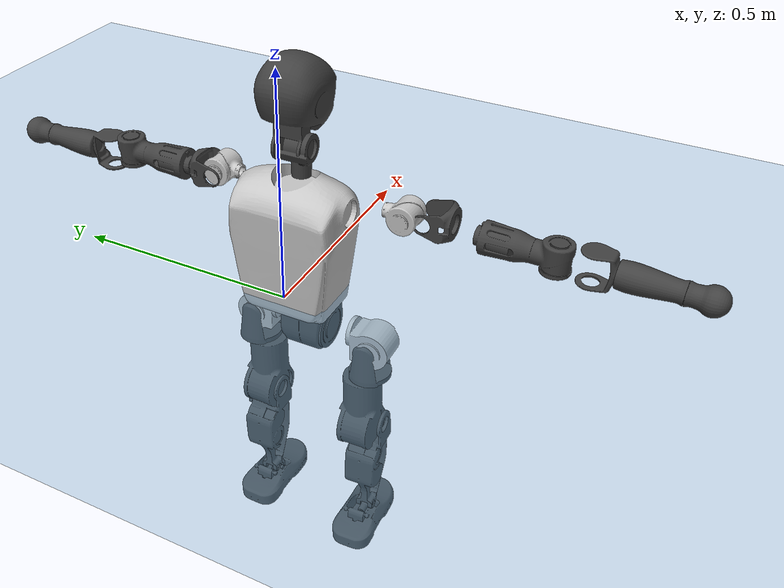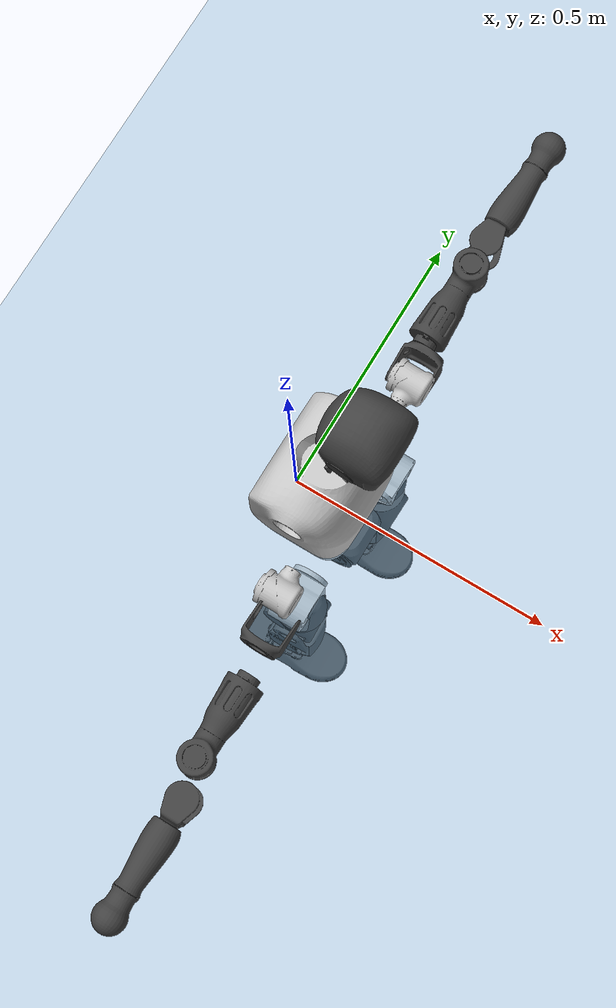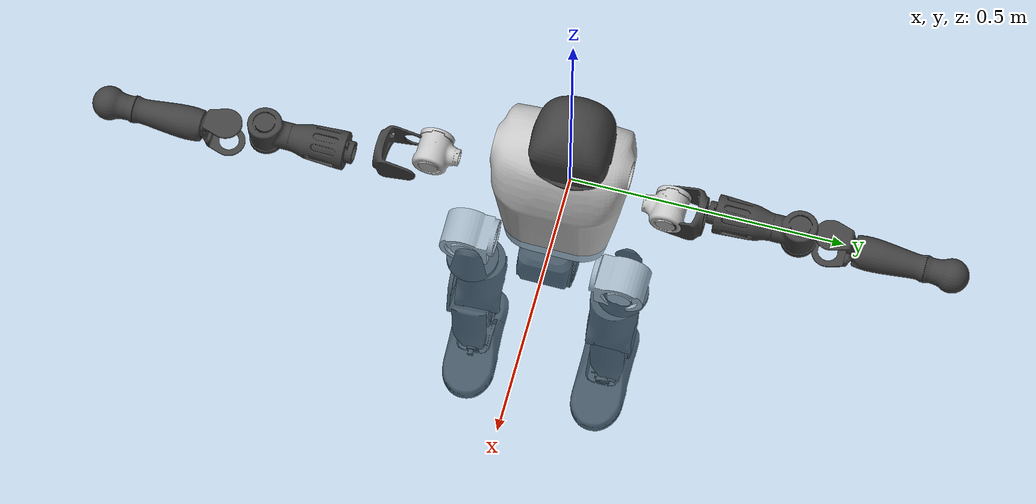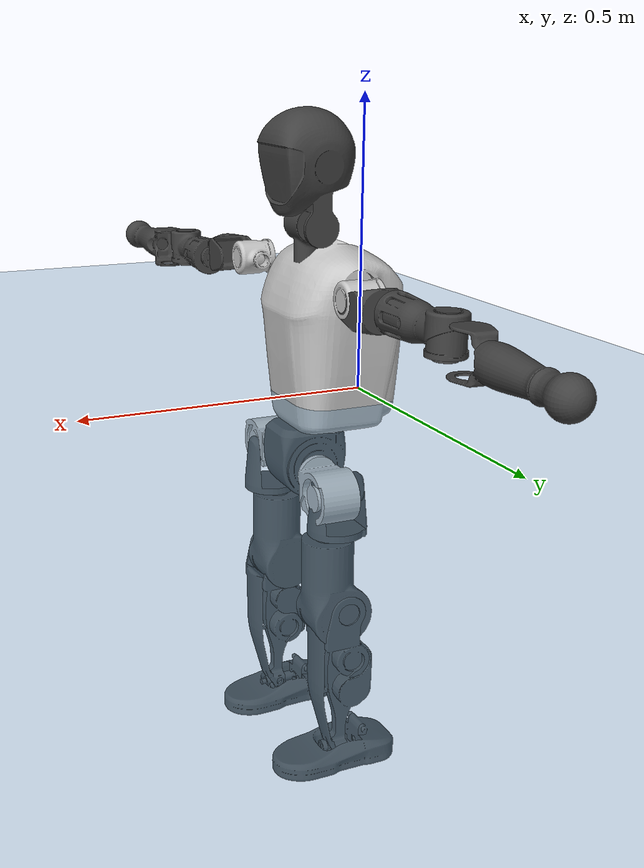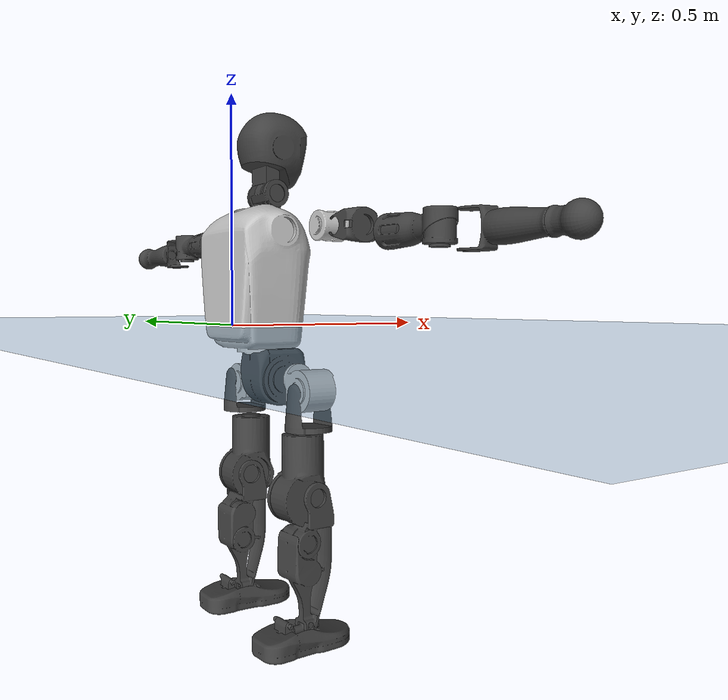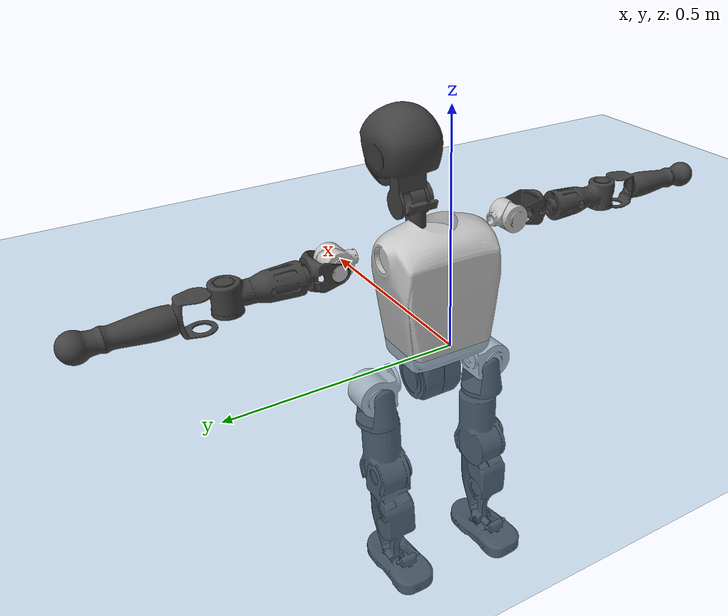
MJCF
<mujoco model="T1">
  <compiler angle="radian" assetdir="assets" balanceinertia="true" inertiafromgeom="false"/>

  <option timestep="0.005" density="1.2" viscosity="2e-05"/>

  <size nkey="1"/>

  <visual>
    <quality shadowsize="8192"/>
    <map shadowclip="0.5"/>
  </visual>

  <default>
    <default class="/">
      <joint armature="0.01" damping="0.01" frictionloss="0.1"/>
      <geom contype="0" conaffinity="0" group="1" solref="-1000 -80"/>
      <site size="0.01 0.005 0.005" group="5"/>
      <general forcelimited="true" biastype="affine" gainprm="25" biasprm="0 -25 -0.6"/>
      <default class="t1">
        <geom rgba="0.25 0.25 0.25 1"/>
        <default class="visual">
          <geom type="mesh" group="2"/>
        </default>
        <default class="collision">
          <geom group="3"/>
        </default>
        <default class="foot">
          <geom size="0.1115 0.05 0.015" type="box" condim="6" group="4" priority="1" solimp="0.015 1 0.015"/>
        </default>
        <default class="reward_collision_sphere">
          <geom group="5" rgba="1 0 0 1"/>
        </default>
      </default>
    </default>
  </default>

  <asset>
    <texture type="skybox" colorspace="auto" name="//unnamed_texture_0" builtin="gradient" rgb1="0.95 0.95 0.95" rgb2="0.95 0.95 0.95" width="100" height="600"/>
    <texture type="2d" colorspace="auto" name="texplane" builtin="checker" rgb1="0.345 0.575 0.748" rgb2="0.345 0.575 0.748" markrgb="1 1 1" width="512" height="512"/>
    <material name="MatPlane" class="/" texture="texplane" texuniform="true" texrepeat="2 2" specular="0.9"/>
    <mesh name="Trunk" class="/" file="Trunk.stl"/>
    <mesh name="H1" class="/" file="H1.stl"/>
    <mesh name="H2" class="/" file="H2.stl"/>
    <mesh name="AL1" class="/" file="AL1.stl"/>
    <mesh name="AL2" class="/" file="AL2.stl"/>
    <mesh name="AL3" class="/" file="AL3.stl"/>
    <mesh name="left_hand_link" class="/" file="left_hand_link.stl"/>
    <mesh name="AR1" class="/" file="AR1.stl"/>
    <mesh name="AR2" class="/" file="AR2.stl"/>
    <mesh name="AR3" class="/" file="AR3.stl"/>
    <mesh name="right_hand_link" class="/" file="right_hand_link.stl"/>
    <mesh name="Waist" class="/" file="Waist.stl"/>
    <mesh name="Hip_Pitch_Left" class="/" file="Hip_Pitch_Left.stl"/>
    <mesh name="Hip_Roll_Left" class="/" file="Hip_Roll_Left.stl"/>
    <mesh name="Hip_Yaw_Left" class="/" file="Hip_Yaw_Left.stl"/>
    <mesh name="Shank_Left" class="/" file="Shank_Left.stl"/>
    <mesh name="Ankle_Cross_Left" class="/" file="Ankle_Cross_Left.stl"/>
    <mesh name="left_foot_link" class="/" file="left_foot_link.stl"/>
    <mesh name="Hip_Pitch_Right" class="/" file="Hip_Pitch_Right.stl"/>
    <mesh name="Hip_Roll_Right" class="/" file="Hip_Roll_Right.stl"/>
    <mesh name="Hip_Yaw_Right" class="/" file="Hip_Yaw_Right.stl"/>
    <mesh name="Shank_Right" class="/" file="Shank_Right.stl"/>
    <mesh name="Ankle_Cross_Right" class="/" file="Ankle_Cross_Right.stl"/>
    <mesh name="right_foot_link" class="/" file="right_foot_link.stl"/>
  </asset>

  <worldbody>
    <geom name="floor" class="/" size="100 100 0.125" type="plane" group="0" material="MatPlane"/>
    <light name="toplight_shadow" class="/" pos="0 0 5" dir="0.0990148 0.0990148 -0.990148" type="directional" ambient="0.04 0.04 0.04" diffuse="0.55 0.55 0.55" specular="0.12 0.12 0.12"/>
    <light name="toplight_fill" class="/" pos="0 0 5" dir="0.0990148 0.0990148 -0.990148" type="directional" castshadow="false" ambient="0.04 0.04 0.04" diffuse="0.3 0.3 0.3" specular="0.08 0.08 0.08"/>
    <body name="trunk" childclass="t1" pos="0.00502891 0.000280633 -0.0158232" quat="0.999995 -0.00211144 -9.31767e-05 -0.00232684">
      <inertial pos="0.0780029 0.00376003 0.117137" quat="0.998063 -0.0535731 -0.0218521 0.0228481" mass="29.7759" diaginertia="0.699096 0.474497 0.0686819"/>
      <joint name="//unnamed_joint_0" type="free" armature="0" damping="0" frictionloss="0"/>
      <geom name="//unnamed_geom_1" class="visual" rgba="0.76 0.76 0.76 1" mesh="Trunk"/>
      <geom name="//unnamed_geom_2" class="collision" size="0.100131 0.133508 0.200262" pos="0.0892803 0 0.122943" type="box"/>
      <geom name="//unnamed_geom_3" class="reward_collision_sphere" size="0.153534" pos="0.0892803 0 0.102452"/>
      <geom name="//unnamed_geom_4" class="reward_collision_sphere" size="0.0200262" pos="0.0892803 0.12688 0"/>
      <geom name="//unnamed_geom_5" class="reward_collision_sphere" size="0.0200262" pos="0.0892803 -0.12688 0"/>
      <geom name="//unnamed_geom_6" class="reward_collision_sphere" size="0.0200262" pos="0.0892803 0.159719 0.184414"/>
      <geom name="//unnamed_geom_7" class="reward_collision_sphere" size="0.0200262" pos="0.0892803 -0.159719 0.184414"/>
      <site name="imu" pos="-0.0968841 0.0863087 -0.054691" size="0.0133508"/>
      <camera name="track" pos="0 -2.98541 0" quat="0.707107 0.707107 0 0" mode="trackcom"/>
      <camera name="ego_camera" pos="0.181537 0 0.430299" quat="-0.5 -0.5 0.5 0.5"/>
      <body name="H1" pos="0.103392 0.0129178 0.248278" quat="0.99998 -0.00337627 0.00112139 0.0052555">
        <inertial pos="-0.000701618 0.00553677 0.0667328" quat="0.762141 -0.0107527 0.0481779 0.645526" mass="0.9735" diaginertia="0.00130023 0.00156782 0.000135193"/>
        <joint name="AAHead_yaw" pos="0 0 0" axis="0.0104922 -0.0100062 0.999895" range="-1.78797 1.30182" armature="0.00712497" damping="0" frictionloss="0.193408"/>
        <geom name="//unnamed_geom_8" class="visual" mesh="H1"/>
        <body name="H2" pos="-0.00447959 0.0178997 0.058339" quat="0.999998 0.000921526 -0.00050056 -0.00174606">
          <inertial pos="-0.00816208 -0.0165536 0.0870111" quat="0.988381 0.111023 -0.0978857 -0.0345783" mass="1.07363" diaginertia="0.0121663 0.0150531 0.00199208"/>
          <joint name="Head_pitch" pos="0 0 0" axis="-0.04252 -0.999047 0.0098875" range="-1.20479 0.0688743" armature="0.025255" damping="0.0769339" frictionloss="0.12218"/>
          <geom name="//unnamed_geom_9" class="visual" mesh="H2"/>
          <geom name="//unnamed_geom_10" class="collision" size="0.106806" pos="0.01488 0 0.112697"/>
          <geom name="//unnamed_geom_11" class="reward_collision_sphere" size="0.120157" pos="0.0297601 0 0.102452"/>
        </body>
      </body>
      <body name="AL1" pos="0.100745 0.155418 0.219311" quat="0.999982 0.00148352 0.00420712 -0.003996">
        <inertial pos="-0.012462 0.0552615 -0.0180414" quat="0.464935 0.52364 -0.534617 0.473097" mass="1.32837" diaginertia="0.0103922 0.00898038 0.00027144"/>
        <joint name="Left_Shoulder_Pitch" pos="0 0 0" axis="0.00537349 0.9989 -0.0465914" stiffness="0.0838916" range="-2.95832 1.501" armature="0.00800436" damping="0.0129753" frictionloss="0.149635"/>
        <geom name="//unnamed_geom_12" class="visual" rgba="0.76 0.76 0.76 1" mesh="AL1"/>
        <body name="AL2" pos="-0.00554289 0.052557 -0.00890726" quat="0.999953 0.00651455 -0.00375085 0.00617785">
          <inertial pos="-0.00556487 0.0607249 0.015443" quat="0.466341 0.538674 -0.487194 0.504975" mass="0.220812" diaginertia="0.00241945 0.00158911 0.00016884"/>
          <joint name="Left_Shoulder_Roll" pos="0 0 0" axis="-0.995157 -0.0755526 0.0628807" stiffness="0.0621259" range="-1.30214 1.6693" armature="0.0052771" damping="0.102909" frictionloss="0.202125"/>
          <geom name="//unnamed_geom_13" class="visual" mesh="AL2"/>
          <body name="AL3" pos="-0.0104488 0.0728024 0.00166275" quat="0.99995 -0.00767716 -0.00613187 -0.00178703">
            <inertial pos="-0.00601985 0.122063 -0.00343176" quat="0.729116 0.680458 -0.0586678 -0.0438663" mass="1.88279" diaginertia="0.0776187 0.0689108 0.000623785"/>
            <joint name="Left_Elbow_Pitch" pos="0 0 0" axis="-0.00583727 -0.999817 -0.0182203" range="-2.04054 2.18339" armature="0.0105656" damping="0" frictionloss="0.107528"/>
            <geom name="//unnamed_geom_14" class="visual" mesh="AL3"/>
            <geom name="//unnamed_geom_15" class="collision" size="0.0400523 0.100131" pos="0 0.0746353 0" quat="0.707105 0.707108 0 0" type="cylinder"/>
            <geom name="//unnamed_geom_16" class="reward_collision_sphere" size="0.0480628"/>
            <body name="left_hand_link" pos="-0.00231196 0.200581 -0.0137632" quat="0.999959 -0.0070918 0.000645127 -0.00567405">
              <inertial pos="0.00705297 0.174971 0.0182438" quat="0.643778 0.765209 -7.64413e-05 0.00208112" mass="0.942199" diaginertia="0.0629963 0.0711739 0.00034837"/>
              <joint name="Left_Elbow_Yaw" pos="0 0 0" axis="0.00460191 0.0830261 0.996537" range="-2.47371 -0.315071" armature="0.0128034" damping="0.0788571" frictionloss="0.00422723"/>
              <geom name="//unnamed_geom_17" class="visual" mesh="left_hand_link"/>
              <geom name="//unnamed_geom_18" class="collision" size="0.0400523 0.116819" pos="0 0.194052 0" quat="0.707105 0.707108 0 0" type="cylinder"/>
              <geom name="//unnamed_geom_19" class="reward_collision_sphere" size="0.0667538"/>
              <geom name="//unnamed_geom_20" class="reward_collision_sphere" size="0.0467277" pos="0 0.164198 0"/>
              <geom name="//unnamed_geom_21" class="reward_collision_sphere" size="0.0467277" pos="0 0.320932 0"/>
            </body>
          </body>
        </body>
      </body>
      <body name="AR1" pos="0.102309 -0.17333 0.219303" quat="0.999992 -0.00194225 0.00341972 -0.000311873">
        <inertial pos="-0.00597938 -0.058862 -0.00633464" quat="0.490685 0.502507 -0.492024 0.51442" mass="1.15593" diaginertia="0.0100905 0.0114145 0.000375578"/>
        <joint name="Right_Shoulder_Pitch" pos="0 0 0" axis="0.0327683 -0.998103 0.0521285" range="-1.59006 3.44633" armature="0.0163781" damping="0" frictionloss="0.14994"/>
        <geom name="//unnamed_geom_22" class="visual" rgba="0.76 0.76 0.76 1" mesh="AR1"/>
        <body name="AR2" pos="0.0180311 -0.0856229 -0.00360686" quat="0.999982 0.00392463 0.00297748 -0.00353552">
          <inertial pos="0.0187067 -0.067461 0.0148405" quat="0.501334 0.542325 -0.493053 0.459833" mass="0.301304" diaginertia="0.00309635 0.00276552 0.000192235"/>
          <joint name="Right_Shoulder_Roll" pos="0 0 0" axis="-0.999444 -0.0331851 -0.00333578" range="-1.9854 1.93514" armature="0.010557" damping="0" frictionloss="0.252075"/>
          <geom name="//unnamed_geom_23" class="visual" mesh="AR2"/>
          <body name="AR3" pos="0.0124166 -0.109545 -0.017287" quat="0.999995 0.00192413 -0.00199206 -0.00147232">
            <inertial pos="0.00020421 -0.118393 0.00129829" quat="0.675015 0.732191 -0.0103085 0.0902533" mass="2.70787" diaginertia="0.10485 0.0758331 0.000750295"/>
            <joint name="Right_Elbow_Pitch" pos="0 0 0" axis="-0.00145307 0.999998 0.00142721" range="-2.218 2.33118" armature="0.0181271" damping="0" frictionloss="0.0101283"/>
            <geom name="//unnamed_geom_24" class="visual" mesh="AR3"/>
            <geom name="//unnamed_geom_25" class="collision" size="0.0400523 0.100131" pos="0 -0.0746353 0" quat="0.707105 0.707108 0 0" type="cylinder"/>
            <geom name="//unnamed_geom_26" class="reward_collision_sphere" size="0.0480628"/>
            <body name="right_hand_link" pos="0.0171971 -0.212208 -0.00955848" quat="0.999981 0.00287651 -0.00532756 0.00131393">
              <inertial pos="-0.00751585 -0.163788 -0.0173765" quat="0.75248 0.656359 0.0522749 0.0152988" mass="0.874877" diaginertia="0.086429 0.0708635 0.000308163"/>
              <joint name="Right_Elbow_Yaw" pos="0 0 0" axis="0.0229841 0.0205868 0.999524" stiffness="0.0174164" range="0.315601 2.27803" armature="0" damping="0.00592197" frictionloss="0.123565"/>
              <geom name="//unnamed_geom_27" class="visual" mesh="right_hand_link"/>
              <geom name="//unnamed_geom_28" class="collision" size="0.0400523 0.116819" pos="0 -0.194052 0" quat="0.707105 0.707108 0 0" type="cylinder"/>
              <geom name="//unnamed_geom_29" class="reward_collision_sphere" size="0.0667538"/>
              <geom name="//unnamed_geom_30" class="reward_collision_sphere" size="0.0467277" pos="0 -0.164198 0"/>
              <geom name="//unnamed_geom_31" class="reward_collision_sphere" size="0.0467277" pos="0 -0.320932 0"/>
            </body>
          </body>
        </body>
      </body>
      <body name="Waist" pos="0.0922099 -0.0100421 -0.102635" quat="0.999997 -0.00193923 0.000318088 0.00159618">
        <inertial pos="-0.0148817 0.00120301 0.00656701" quat="0.97448 0.00133372 -0.221685 -0.0352462" mass="6.07112" diaginertia="0.0464591 0.0578721 0.00583137"/>
        <joint name="Waist" pos="0 0 0" axis="-0.0430093 0.0206537 0.998861" stiffness="0.0221138" range="-1.96138 1.34578" armature="0.0237635" damping="0" frictionloss="0.174749"/>
        <geom name="//unnamed_geom_32" class="visual" mesh="Waist"/>
        <body name="Hip_Pitch_Left" pos="0.0179923 0.141068 0.000963366" quat="0.999957 -0.000673737 0.00479873 -0.00793815">
          <inertial pos="0.0141201 -0.0300859 -0.0162511" quat="0.973576 0.226957 0.0193573 0.0162894" mass="3.1305" diaginertia="0.0146819 0.00951264 0.00159196"/>
          <joint name="Left_Hip_Pitch" pos="0 0 0" axis="-0.0128337 0.99923 -0.0370672" range="-1.83375 1.29152" armature="0.0122955" damping="0" frictionloss="0.130573"/>
          <geom name="//unnamed_geom_33" class="visual" rgba="0.76 0.76 0.76 1" mesh="Hip_Pitch_Left"/>
          <body name="Hip_Roll_Left" pos="-0.0126385 -0.00382471 -0.0108426" quat="0.999963 0.00798681 -0.00309266 0.000724663">
            <inertial pos="0.00126378 0.00395571 -0.0458849" quat="0.705597 0.0141304 -0.00413466 0.708461" mass="0.844586" diaginertia="0.0128217 0.0129534 0.000666188"/>
            <joint name="Left_Hip_Roll" pos="0 0 0" axis="-0.999995 -0.00115467 -0.00283789" stiffness="0.066674" range="-1.74542 0.390125" armature="0.0118908" damping="0" frictionloss="0.0276348"/>
            <geom name="//unnamed_geom_34" class="visual" mesh="Hip_Roll_Left"/>
            <geom name="//unnamed_geom_35" class="reward_collision_sphere" size="0.0734292"/>
            <body name="Hip_Yaw_Left" pos="0.00853312 -0.0124074 -0.09057" quat="0.999977 -0.0066669 0.0015353 -0.00022836">
              <inertial pos="-0.00977311 0.00282903 -0.0916995" quat="0.716838 -0.0796618 -0.107512 0.68428" mass="5.90415" diaginertia="0.17092 0.232533 0.0024604"/>
              <joint name="Left_Hip_Yaw" pos="0 0 0" axis="0.0506048 -0.0697941 -0.996277" range="-1.09845 0.873233" armature="0.0115973" damping="0.0545391" frictionloss="0.137187"/>
              <geom name="//unnamed_geom_36" class="visual" mesh="Hip_Yaw_Left"/>
              <geom name="//unnamed_geom_37" class="collision" size="0.0667538 0.106806" type="cylinder"/>
              <body name="Shank_Left" pos="-0.0238214 -0.00454859 -0.13" quat="0.99998 -0.000175102 0.00187325 0.00607834">
                <inertial pos="-0.0043376 -0.0096883 -0.125262" quat="0.990828 -0.0477334 -0.0171237 0.125251" mass="3.88804" diaginertia="0.31998 0.230828 0.00217474"/>
                <joint name="Left_Knee_Pitch" pos="0 0 0" axis="-0.0172723 0.999845 0.00336066" stiffness="0.0198765" range="-0.213131 2.36525" armature="0.00659669" damping="0.0393545" frictionloss="0.0213085"/>
                <geom name="//unnamed_geom_38" class="visual" mesh="Shank_Left"/>
                <geom name="//unnamed_geom_39" class="collision" size="0.0667538 0.100131" pos="0 0 -0.122943" type="cylinder"/>
                <geom name="//unnamed_geom_40" class="reward_collision_sphere" size="0.08678"/>
                <body name="Ankle_Cross_Left" pos="0.0115341 -0.00658279 -0.289217" quat="0.999977 0.00474143 0.00253516 -0.00411219">
                  <inertial pos="0.00135712 -0.0123555 0.011438" quat="0.459542 0.577269 0.509817 0.442344" mass="0.123353" diaginertia="0.000129887 0.000174963 1.16327e-05"/>
                  <joint name="Left_Ankle_Pitch" pos="0 0 0" axis="0.0545867 0.997983 -0.0324033" stiffness="0.0324899" range="-0.473672 0.0852586" armature="0.0214863" damping="0" frictionloss="0.0187602"/>
                  <geom name="//unnamed_geom_41" class="visual" mesh="Ankle_Cross_Left"/>
                  <body name="left_foot_link" pos="-0.0173078 -0.00495454 0.00558406" quat="0.999987 -0.00119532 -2.96524e-05 0.00497733">
                    <inertial pos="0.00948787 0.0182133 -0.0176063" quat="-0.00942473 0.608366 -0.0128554 0.793497" mass="1.9266" diaginertia="0.0165847 0.0184125 0.00223055"/>
                    <joint name="Left_Ankle_Roll" pos="0 0 0" axis="-0.998789 -0.0491058 -0.00313304" range="-0.165159 0.659887" armature="0.012438" damping="0.0648245" frictionloss="0.090282"/>
                    <geom name="//unnamed_geom_42" class="visual" mesh="left_foot_link"/>
                    <geom name="left_foot" class="foot" size="0.0962834 0.0752036 0.0111571" pos="0.01488 0 -0.0153678"/>
                    <geom name="//unnamed_geom_44" class="reward_collision_sphere" size="0.069424" pos="0.01488 0 -0.0153678"/>
                    <geom name="//unnamed_geom_45" class="reward_collision_sphere" size="0.0400523" pos="0.14136 -0.0343322 -0.0153678"/>
                    <geom name="//unnamed_geom_46" class="reward_collision_sphere" size="0.0400523" pos="-0.10416 -0.0343322 -0.0153678"/>
                    <site name="left_foot" class="foot" pos="0.01488 0 -0.0153678" size="0.0133508"/>
                  </body>
                </body>
              </body>
            </body>
          </body>
        </body>
        <body name="Hip_Pitch_Right" pos="8.7121e-05 -0.155939 0.00424466" quat="0.999979 -0.00242182 -5.43082e-05 0.00604085">
          <inertial pos="-0.00146569 0.00167373 -0.0366577" quat="0.97637 -0.200061 0.0411479 0.0705938" mass="2.15961" diaginertia="0.0116181 0.00985998 0.00100311"/>
          <joint name="Right_Hip_Pitch" pos="0 0 0" axis="0.0746545 -0.996803 0.0284794" stiffness="0.0607365" range="-1.48919 1.83436" armature="0.00319189" damping="0.0476938" frictionloss="0.0473584"/>
          <geom name="//unnamed_geom_47" class="visual" rgba="0.76 0.76 0.76 1" mesh="Hip_Pitch_Right"/>
          <body name="Hip_Roll_Right" pos="0.00268716 0.0121783 -0.0301074" quat="0.999951 -0.00604875 0.000708267 0.00777472">
            <inertial pos="-0.0176976 -0.0100943 -0.0406154" quat="0.728859 -0.0664255 0.0329915 0.680634" mass="1.09357" diaginertia="0.017885 0.0118985 0.000673"/>
            <joint name="Right_Hip_Roll" pos="0 0 0" axis="-0.999846 0.0155852 0.00812813" range="-0.183986 1.25224" armature="0.00987818" damping="0" frictionloss="0.134674"/>
            <geom name="//unnamed_geom_48" class="visual" mesh="Hip_Roll_Right"/>
            <geom name="//unnamed_geom_49" class="reward_collision_sphere" size="0.0734292"/>
            <body name="Hip_Yaw_Right" pos="-0.00733674 0.0154729 -0.0838639" quat="0.999961 0.00194691 -0.000694867 0.00859734">
              <inertial pos="-0.0241525 0.00736249 -0.101432" quat="0.672965 -0.0551019 0.00066845 0.737619" mass="3.50601" diaginertia="0.114447 0.110312 0.0019409"/>
              <joint name="Right_Hip_Yaw" pos="0 0 0" axis="0.0344487 0.037879 -0.998688" range="-0.944845 1.39123" armature="0.0119542" damping="0.0122782" frictionloss="0.25221"/>
              <geom name="//unnamed_geom_50" class="visual" mesh="Hip_Yaw_Right"/>
              <geom name="//unnamed_geom_51" class="collision" size="0.0667538 0.106806" type="cylinder"/>
              <body name="Shank_Right" pos="-0.00243856 -0.0144423 -0.125959" quat="0.999961 0.00511156 0.00669654 0.00248045">
                <inertial pos="-0.0259193 -0.0131081 -0.118491" quat="0.999411 0.00974857 -0.00553173 -0.032439" mass="3.51467" diaginertia="0.257431 0.342698 0.00288898"/>
                <joint name="Right_Knee_Pitch" pos="0 0 0" axis="-0.00127187 -0.999208 -0.0397739" range="-2.15669 -0.0267402" armature="0.00927777" damping="0" frictionloss="0.0574229"/>
                <geom name="//unnamed_geom_52" class="visual" mesh="Shank_Right"/>
                <geom name="//unnamed_geom_53" class="collision" size="0.0667538 0.100131" pos="0 0 -0.122943" type="cylinder"/>
                <geom name="//unnamed_geom_54" class="reward_collision_sphere" size="0.08678"/>
                <body name="Ankle_Cross_Right" pos="-0.00107936 -0.00104599 -0.271623" quat="0.999963 -0.00287121 -0.00148066 -0.00800549">
                  <inertial pos="-0.00547211 0.00196124 -0.0100501" quat="0.447883 0.571099 0.504635 0.467537" mass="0.250454" diaginertia="0.000248256 0.000220245 1.6437e-05"/>
                  <joint name="Right_Ankle_Pitch" pos="0 0 0" axis="0.0829013 -0.995071 0.0544083" range="-0.395752 1.16583" armature="0.00271569" damping="0.0796884" frictionloss="0.264021"/>
                  <geom name="//unnamed_geom_55" class="visual" mesh="Ankle_Cross_Right"/>
                  <body name="right_foot_link" pos="-0.0147742 0.00020471 -0.0223112" quat="0.99998 0.00216353 -0.00161684 0.00574177">
                    <inertial pos="-0.00939511 -0.000466087 0.00753372" quat="-0.0180106 0.627877 0.0290196 0.777563" mass="1.11629" diaginertia="0.0200464 0.0140233 0.00244524"/>
                    <joint name="Right_Ankle_Roll" pos="0 0 0" axis="-0.99684 -0.0309696 0.0731482" range="-0.834983 0.199962" armature="0.024362" damping="0" frictionloss="0.093274"/>
                    <geom name="//unnamed_geom_56" class="visual" mesh="right_foot_link"/>
                    <geom name="right_foot" class="foot" size="0.254909 0.0533621 0.0221607" pos="0.01488 0 -0.0153678"/>
                    <geom name="//unnamed_geom_58" class="reward_collision_sphere" size="0.0534031"/>
                    <geom name="//unnamed_geom_59" class="reward_collision_sphere" size="0.0400523" pos="0.01488 0 -0.0153678"/>
                    <geom name="//unnamed_geom_60" class="reward_collision_sphere" size="0.0400523" pos="0.14136 0.0343322 -0.0153678"/>
                    <geom name="//unnamed_geom_61" class="reward_collision_sphere" size="0.0400523" pos="-0.10416 0.0343322 -0.0153678"/>
                    <site name="right_foot" class="foot" pos="0.01488 0 -0.0153678" size="0.0133508"/>
                  </body>
                </body>
              </body>
            </body>
          </body>
        </body>
      </body>
    </body>
  </worldbody>

  <contact>
    <pair class="/" geom1="floor" geom2="left_foot" name="//unnamed_contact_0"/>
    <pair class="/" geom1="floor" geom2="right_foot" name="//unnamed_contact_1"/>
  </contact>

  <actuator>
    <general name="AAHead_yaw" class="/" joint="AAHead_yaw" forcerange="-13.5344 13.5344" gainprm="20.3498" biasprm="0 -20.3498 -0.593494"/>
    <general name="Head_pitch" class="/" joint="Head_pitch" forcerange="-6.99835 6.99835" gainprm="20.3498" biasprm="0 -20.3498 -0.593494"/>
    <general name="Left_Shoulder_Pitch" class="/" joint="Left_Shoulder_Pitch" forcerange="-27.0272 27.0272" gainprm="20.3498" biasprm="0 -20.3498 -0.593494"/>
    <general name="Left_Shoulder_Roll" class="/" joint="Left_Shoulder_Roll" forcerange="-27.0949 27.0949" gainprm="20.3498" biasprm="0 -20.3498 -0.593494"/>
    <general name="Left_Elbow_Pitch" class="/" joint="Left_Elbow_Pitch" forcerange="-9.19709 9.19709" gainprm="20.3498" biasprm="0 -20.3498 -0.593494"/>
    <general name="Left_Elbow_Yaw" class="/" joint="Left_Elbow_Yaw" forcerange="-30.9773 30.9773" gainprm="20.3498" biasprm="0 -20.3498 -0.593494"/>
    <general name="Right_Shoulder_Pitch" class="/" joint="Right_Shoulder_Pitch" forcerange="-24.7924 24.7924" gainprm="20.3498" biasprm="0 -20.3498 -0.593494"/>
    <general name="Right_Shoulder_Roll" class="/" joint="Right_Shoulder_Roll" forcerange="-24.8223 24.8223" gainprm="20.3498" biasprm="0 -20.3498 -0.593494"/>
    <general name="Right_Elbow_Pitch" class="/" joint="Right_Elbow_Pitch" forcerange="-32.5843 32.5843" gainprm="20.3498" biasprm="0 -20.3498 -0.593494"/>
    <general name="Right_Elbow_Yaw" class="/" joint="Right_Elbow_Yaw" forcerange="-8.79829 8.79829" gainprm="20.3498" biasprm="0 -20.3498 -0.593494"/>
    <general name="Waist" class="/" joint="Waist" forcerange="-22.785 22.785" gainprm="20.3498" biasprm="0 -20.3498 -0.593494"/>
    <general name="Left_Hip_Pitch" class="/" joint="Left_Hip_Pitch" forcerange="-104.036 104.036" gainprm="20.3498" biasprm="0 -20.3498 -0.593494"/>
    <general name="Left_Hip_Roll" class="/" joint="Left_Hip_Roll" forcerange="-28.0215 28.0215" gainprm="20.3498" biasprm="0 -20.3498 -0.593494"/>
    <general name="Left_Hip_Yaw" class="/" joint="Left_Hip_Yaw" forcerange="-25.349 25.349" gainprm="20.3498" biasprm="0 -20.3498 -0.593494"/>
    <general name="Left_Knee_Pitch" class="/" joint="Left_Knee_Pitch" forcerange="-28.6555 28.6555" gainprm="20.3498" biasprm="0 -20.3498 -0.593494"/>
    <general name="Left_Ankle_Pitch" class="/" joint="Left_Ankle_Pitch" forcerange="-19.1895 19.1895" gainprm="20.3498" biasprm="0 -20.3498 -0.593494"/>
    <general name="Left_Ankle_Roll" class="/" joint="Left_Ankle_Roll" forcerange="-21.8436 21.8436" gainprm="20.3498" biasprm="0 -20.3498 -0.593494"/>
    <general name="Right_Hip_Pitch" class="/" joint="Right_Hip_Pitch" forcerange="-18.5442 18.5442" gainprm="20.3498" biasprm="0 -20.3498 -0.593494"/>
    <general name="Right_Hip_Roll" class="/" joint="Right_Hip_Roll" forcerange="-27.3774 27.3774" gainprm="20.3498" biasprm="0 -20.3498 -0.593494"/>
    <general name="Right_Hip_Yaw" class="/" joint="Right_Hip_Yaw" forcerange="-25.4151 25.4151" gainprm="20.3498" biasprm="0 -20.3498 -0.593494"/>
    <general name="Right_Knee_Pitch" class="/" joint="Right_Knee_Pitch" forcerange="-38.5287 38.5287" gainprm="20.3498" biasprm="0 -20.3498 -0.593494"/>
    <general name="Right_Ankle_Pitch" class="/" joint="Right_Ankle_Pitch" forcerange="-38.3926 38.3926" gainprm="20.3498" biasprm="0 -20.3498 -0.593494"/>
    <general name="Right_Ankle_Roll" class="/" joint="Right_Ankle_Roll" forcerange="-33.9119 33.9119" gainprm="20.3498" biasprm="0 -20.3498 -0.593494"/>
  </actuator>

  <sensor>
    <gyro site="imu" name="imu_angular_velocity"/>
    <velocimeter site="imu" name="imu_linear_velocity"/>
    <framelinvel objtype="site" objname="left_foot" name="left_foot_global_linear_velocity"/>
    <framelinvel objtype="site" objname="right_foot" name="right_foot_global_linear_velocity"/>
  </sensor>

  <keyframe>
    <key name="home" qpos="0 0 0.6385 1 0 0 0 0 0 0 1.4 0 -0.4 0 -1.4 0 0.4 0 -0.4 0 0 0.8 -0.4 0 0.4 0 0 -0.8 0.4 0"/>
  </keyframe>
</mujoco>
